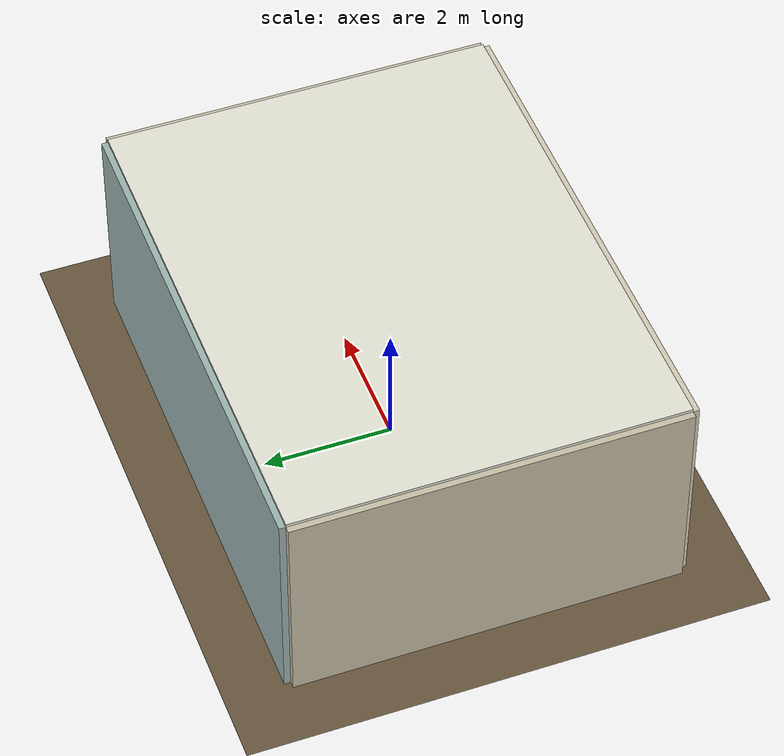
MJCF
<mujoco model="Ito room">
  <compiler angle="radian"/>
  <option timestep="0.002" integrator="implicitfast"/>
  <visual>
    <global offwidth="640" offheight="480"/>
    <quality shadowsize="1024" offsamples="2"/>
    <headlight ambient="0.3 0.3 0.3" diffuse="0.4 0.4 0.4"/>
    <map znear="0.002" zfar="6"/>
  </visual>
  <default>
    <geom condim="4" friction="0.8 0.005 0.001" solref="0.01 1"/>
  </default>
  <asset>
    <texture name="floor_tiles" type="2d" builtin="checker" width="256" height="256" rgb1="0.34 0.28 0.20" rgb2="0.48 0.40 0.29"/>
    <texture name="fabric" type="cube" builtin="checker" width="64" height="64" rgb1="0.10 0.30 0.32" rgb2="0.14 0.38 0.39"/>
    <texture name="wood" type="cube" builtin="checker" width="128" height="128" rgb1="0.37 0.19 0.08" rgb2="0.44 0.25 0.11"/>
    <texture name="rug_weave" type="2d" builtin="checker" width="128" height="128" rgb1="0.70 0.26 0.12" rgb2="0.88 0.62 0.32"/>
    <texture name="shell" type="cube" builtin="flat" width="32" height="32" rgb1="0.86 0.76 0.51" mark="edge" markrgb="0.25 0.22 0.17"/>
    <material name="floor" texture="floor_tiles" texrepeat="8 6" reflectance="0.05"/>
    <material name="upholstery" texture="fabric" texrepeat="8 8"/>
    <material name="oak" texture="wood" texrepeat="4 16"/>
    <material name="rug" texture="rug_weave" texrepeat="10 7"/>
    <material name="robot_shell" texture="shell"/>
    <material name="rubber" rgba="0.06 0.065 0.07 1"/>
  </asset>
  <worldbody>
    <light pos="0 0 3.4" dir="0 0 -1" diffuse="0.75 0.72 0.66"/>
    <light pos="2 -2 2.8" dir="-1 1 -1" diffuse="0.4 0.45 0.5" castshadow="false"/>
    <geom name="floor" type="plane" size="5 4 0.1" material="floor"/>
    <geom type="box" pos="4 0 1.7" size="0.1 3 1.7" rgba="0.79 0.76 0.66 1"/>
    <geom type="box" pos="-4 0 1.7" size="0.1 3 1.7" rgba="0.79 0.76 0.66 1"/>
    <geom type="box" pos="0 3 1.7" size="4 0.1 1.7" rgba="0.62 0.71 0.70 1"/>
    <geom type="box" pos="0 -3 1.7" size="4 0.1 1.7" rgba="0.84 0.81 0.72 1"/>
    <geom type="box" pos="0 0 3.4" size="4 3 0.05" rgba="0.9 0.9 0.85 1"/>
    <geom type="box" pos="1 0 0.008" size="1.7 1.5 0.008" material="rug"/>
    <!-- Sofa and cushions. -->
    <body pos="1.4 2.2 0">
      <geom type="box" pos="0 0 0.28" size="1.15 0.45 0.22" material="oak"/>
      <geom type="box" pos="0 0.35 0.72" size="1.2 0.15 0.48" material="upholstery"/>
      <geom type="box" pos="-1.1 0 0.63" size="0.15 0.5 0.25" material="upholstery"/>
      <geom type="box" pos="1.1 0 0.63" size="0.15 0.5 0.25" material="upholstery"/>
      <geom type="box" pos="-0.5 -0.03 0.52" size="0.46 0.34 0.10" material="upholstery"/>
      <geom type="box" pos="0.5 -0.03 0.52" size="0.46 0.34 0.10" material="upholstery"/>
      <geom type="box" pos="-0.7 0.15 0.84" size="0.22 0.08 0.23" euler="0.1 0.2 0" rgba="0.89 0.56 0.16 1"/>
    </body>
    <!-- Coffee table with books, ceramic bowl, and fruit. -->
    <body pos="1.3 0.5 0">
      <geom type="box" pos="0 0 0.48" size="0.8 0.45 0.045" material="oak"/>
      <geom type="box" pos="-0.65 -0.3 0.23" size="0.05 0.05 0.23" material="oak"/>
      <geom type="box" pos="0.65 -0.3 0.23" size="0.05 0.05 0.23" material="oak"/>
      <geom type="box" pos="-0.65 0.3 0.23" size="0.05 0.05 0.23" material="oak"/>
      <geom type="box" pos="0.65 0.3 0.23" size="0.05 0.05 0.23" material="oak"/>
      <geom type="box" pos="-0.35 0 0.55" size="0.2 0.14 0.025" rgba="0.75 0.12 0.07 1"/>
      <geom type="box" pos="-0.32 0.02 0.59" size="0.18 0.13 0.015" euler="0 0 0.2" rgba="0.12 0.25 0.58 1"/>
      <geom type="ellipsoid" pos="0.3 0 0.55" size="0.2 0.2 0.04" rgba="0.9 0.88 0.8 1"/>
      <geom type="sphere" pos="0.27 0 0.62" size="0.07" rgba="0.88 0.3 0.02 1"/>
      <geom type="sphere" pos="0.38 0.07 0.61" size="0.06" rgba="0.28 0.6 0.08 1"/>
    </body>
    <!-- Bookcase, shelves, and colored spines. -->
    <body pos="3.6 -0.4 0">
      <geom type="box" pos="0.1 0 1.1" size="0.08 0.85 1.1" material="oak"/>
      <geom type="box" pos="-0.1 -0.85 1.1" size="0.28 0.05 1.1" material="oak"/>
      <geom type="box" pos="-0.1 0.85 1.1" size="0.28 0.05 1.1" material="oak"/>
      <geom type="box" pos="-0.1 0 0.15" size="0.28 0.85 0.04" material="oak"/>
      <geom type="box" pos="-0.1 0 0.75" size="0.28 0.85 0.04" material="oak"/>
      <geom type="box" pos="-0.1 0 1.4" size="0.28 0.85 0.04" material="oak"/>
      <geom type="box" pos="-0.1 0 2.15" size="0.28 0.85 0.04" material="oak"/>
      <geom type="box" pos="-0.12 -0.6 1.03" size="0.19 0.07 0.23" rgba="0.65 0.15 0.12 1"/>
      <geom type="box" pos="-0.12 -0.42 1.04" size="0.18 0.09 0.24" rgba="0.12 0.3 0.53 1"/>
      <geom type="box" pos="-0.12 -0.22 1" size="0.18 0.06 0.2" rgba="0.8 0.64 0.19 1"/>
      <geom type="box" pos="-0.12 0.4 1.7" size="0.18 0.09 0.26" rgba="0.23 0.43 0.2 1"/>
      <geom type="box" pos="-0.12 0.6 1.68" size="0.18 0.07 0.24" rgba="0.62 0.25 0.14 1"/>
      <geom type="sphere" pos="-0.1 -0.4 1.65" size="0.2" rgba="0.35 0.65 0.73 1"/>
    </body>
    <!-- Window, framed abstract artwork, floor lamp and potted plant. -->
    <geom type="box" pos="0.3 -2.87 1.9" size="1.1 0.04 0.7" material="oak"/>
    <geom type="box" pos="0.3 -2.82 1.9" size="1.02 0.02 0.62" rgba="0.38 0.65 0.83 1"/>
    <geom type="box" pos="0.3 -2.79 1.9" size="0.025 0.02 0.64" rgba="0.85 0.85 0.8 1"/>
    <geom type="box" pos="0.3 -2.79 1.9" size="1.04 0.02 0.025" rgba="0.85 0.85 0.8 1"/>
    <geom type="box" pos="3.87 1.65 1.85" size="0.03 0.65 0.5" material="oak"/>
    <geom type="box" pos="3.83 1.65 1.85" size="0.02 0.59 0.44" rgba="0.19 0.34 0.48 1"/>
    <geom type="sphere" pos="3.79 1.45 2.03" size="0.15" rgba="0.94 0.63 0.19 1"/>
    <geom type="box" pos="3.79 1.73 1.63" size="0.015 0.4 0.14" rgba="0.25 0.51 0.42 1"/>
    <body pos="2.9 2.3 0">
      <geom type="cylinder" pos="0 0 0.035" size="0.22 0.035" rgba="0.13 0.14 0.15 1"/>
      <geom type="cylinder" pos="0 0 0.85" size="0.025 0.85" rgba="0.13 0.14 0.15 1"/>
      <geom type="cylinder" pos="0 0 1.7" size="0.28 0.20" rgba="0.93 0.81 0.54 1"/>
    </body>
    <body pos="2.7 -2.3 0">
      <geom type="cylinder" pos="0 0 0.2" size="0.23 0.2" rgba="0.64 0.3 0.16 1"/>
      <geom type="capsule" fromto="0 0 0.35 0 0 1.3" size="0.025" rgba="0.22 0.32 0.09 1"/>
      <geom type="ellipsoid" pos="0.14 0 0.95" size="0.28 0.12 0.14" euler="0 -0.7 0" rgba="0.13 0.38 0.12 1"/>
      <geom type="ellipsoid" pos="-0.14 0.05 0.75" size="0.27 0.12 0.14" euler="0 0.6 0" rgba="0.2 0.46 0.15 1"/>
      <geom type="ellipsoid" pos="0 0.08 1.2" size="0.16 0.12 0.26" rgba="0.16 0.42 0.13 1"/>
    </body>
  </worldbody>
  <include file="robot.xml"/>
</mujoco>

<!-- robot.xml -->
<mujoco>
  <worldbody>
    <!-- +X forward, +Y left, +Z up; differential drive with passive ball casters. -->
    <body name="base" pos="-2 0 0.19">
      <freejoint/>
      <geom type="box" size="0.29 0.22 0.10" mass="12" material="robot_shell"/>
      <geom type="box" pos="0.02 0 0.13" size="0.19 0.17 0.04" mass="1" rgba="0.08 0.12 0.16 1"/>
      <geom type="sphere" pos="0.23 0 -0.14" size="0.05" mass="0.1" priority="1" friction="0.002 0.001 0.001"/>
      <geom type="sphere" pos="-0.23 0 -0.14" size="0.05" mass="0.1" priority="1" friction="0.002 0.001 0.001"/>
      <body name="left_wheel" pos="0 0.26 -0.05">
        <joint name="left_wheel_joint" axis="0 1 0" damping="0.1"/>
        <geom type="cylinder" size="0.14 0.035" quat="0.707107 0.707107 0 0" mass="0.6" material="rubber" friction="1.2 0.005 0.001"/>
      </body>
      <body name="right_wheel" pos="0 -0.26 -0.05">
        <joint name="right_wheel_joint" axis="0 1 0" damping="0.1"/>
        <geom type="cylinder" size="0.14 0.035" quat="0.707107 0.707107 0 0" mass="0.6" material="rubber" friction="1.2 0.005 0.001"/>
      </body>
      <geom type="cylinder" pos="0 0 0.4" size="0.045 0.3" mass="1" rgba="0.14 0.18 0.21 1"/>
      <body name="pan" pos="0 0 0.72">
        <joint name="head_pan_joint" axis="0 0 1" range="-1.4 1.4" damping="1"/>
        <geom type="cylinder" size="0.09 0.055" mass="0.4" material="robot_shell"/>
        <geom type="box" pos="0 0.16 0.10" size="0.04 0.02 0.10" mass="0.1" material="robot_shell"/>
        <geom type="box" pos="0 -0.16 0.10" size="0.04 0.02 0.10" mass="0.1" material="robot_shell"/>
        <body name="tilt" pos="0 0 0.16">
          <joint name="head_tilt_joint" axis="0 -1 0" range="-0.65 0.65" damping="1"/>
          <geom type="box" size="0.10 0.13 0.065" mass="0.6" material="robot_shell"/>
          <geom type="box" pos="0.103 0 0" size="0.005 0.095 0.04" mass="0.01" rgba="0.015 0.025 0.03 1"/>
          <camera name="head" pos="0.115 0 0" xyaxes="0 -1 0 0 0 1" fovy="65"/>
        </body>
      </body>
    </body>
  </worldbody>
  <actuator>
    <position name="head_pan" joint="head_pan_joint" kp="35" kv="5" ctrlrange="-1.4 1.4" forcerange="-12 12"/>
    <position name="head_tilt" joint="head_tilt_joint" kp="35" kv="5" ctrlrange="-0.65 0.65" forcerange="-12 12"/>
    <velocity name="left_drive" joint="left_wheel_joint" kv="5" ctrlrange="-15 15" forcerange="-15 15"/>
    <velocity name="right_drive" joint="right_wheel_joint" kv="5" ctrlrange="-15 15" forcerange="-15 15"/>
  </actuator>
</mujoco>
